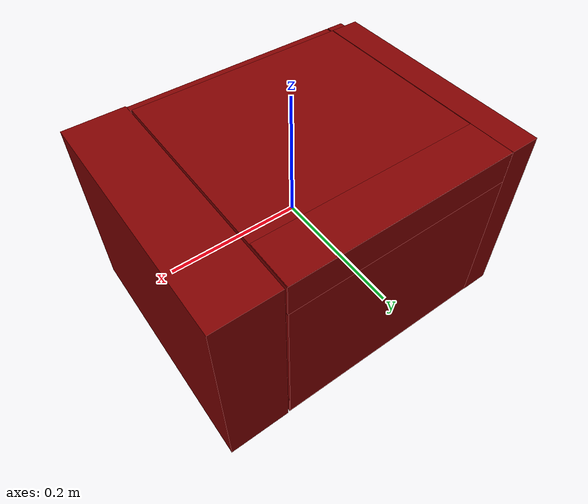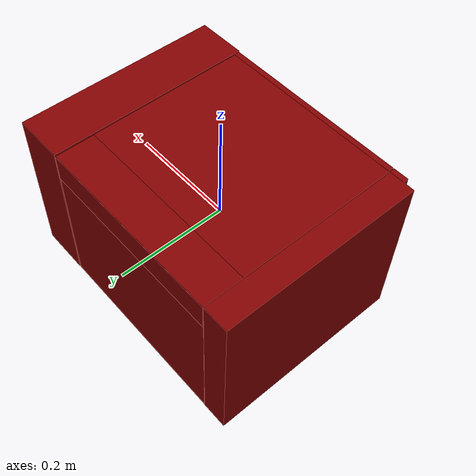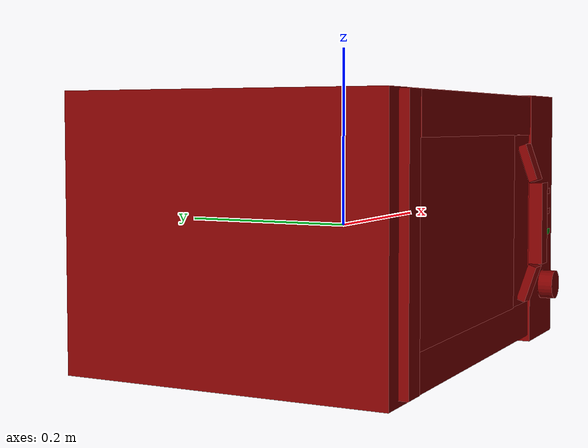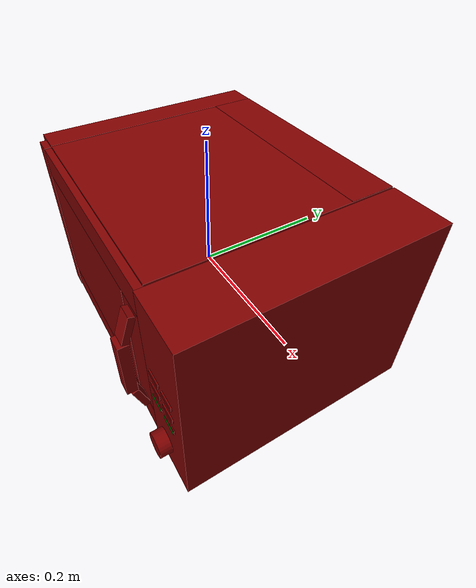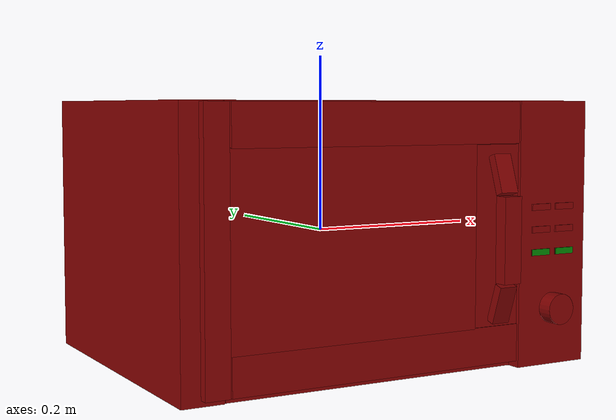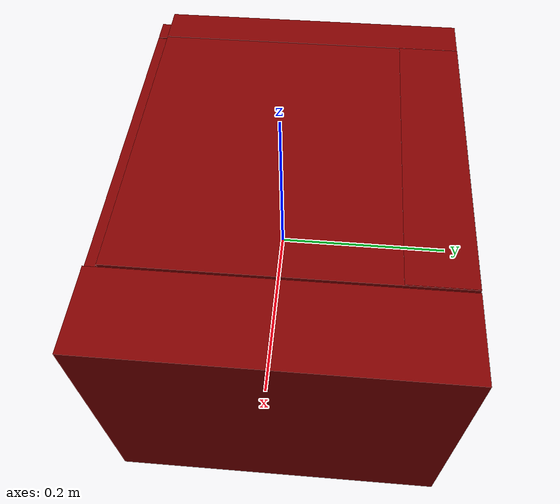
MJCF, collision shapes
<mujoco model="model">
  <compiler angle="radian"/>
  <asset>
    <mesh file="visuals/door.obj" name="door_vis"/>
    <mesh file="visuals/door_Clear.obj" name="door_Clear_vis"/>
    <mesh file="visuals/Body001.obj" name="Body001_vis"/>
    <mesh file="visuals/Button001.obj" name="Button001_vis"/>
    <mesh file="visuals/Button002.obj" name="Button002_vis"/>
    <mesh file="visuals/Button003.obj" name="Button003_vis"/>
    <mesh file="visuals/Button004.obj" name="Button004_vis"/>
    <mesh file="visuals/Button005.obj" name="Button005_vis"/>
    <mesh file="visuals/Button006.obj" name="Button006_vis"/>
    <mesh file="visuals/Disc001.obj" name="Disc001_vis"/>
    <mesh file="visuals/Knob001.obj" name="Knob001_vis"/>
    <texture file="visuals/T_BC001.png" name="Body001_material" type="2d"/>
    <material name="Body001_material" rgba="1 1 1 1.0" texture="Body001_material" shininess="0.711989015340805" specular="0.3103448502657381"/>
    <texture file="visuals/T_BC001.png" name="door_material" type="2d"/>
    <material name="door_material" rgba="1 1 1 1.0" texture="door_material" shininess="0.711989015340805" specular="0.3103448502657381"/>
    <texture file="visuals/T_BC001.png" name="door_Clear_material" type="2d"/>
    <material name="door_Clear_material" rgba="1 1 1 0.800000011920929" texture="door_Clear_material" shininess="0.5228637158870697" specular="0.3103448502657381"/>
    <texture file="visuals/T_BC001.png" name="Button001_material" type="2d"/>
    <material name="Button001_material" rgba="1 1 1 1.0" texture="Button001_material" shininess="0.711989015340805" specular="0.3103448502657381"/>
    <texture file="visuals/T_BC001.png" name="Button002_material" type="2d"/>
    <material name="Button002_material" rgba="1 1 1 1.0" texture="Button002_material" shininess="0.711989015340805" specular="0.3103448502657381"/>
    <texture file="visuals/T_BC001.png" name="Button003_material" type="2d"/>
    <material name="Button003_material" rgba="1 1 1 1.0" texture="Button003_material" shininess="0.711989015340805" specular="0.3103448502657381"/>
    <texture file="visuals/T_BC001.png" name="Button004_material" type="2d"/>
    <material name="Button004_material" rgba="1 1 1 1.0" texture="Button004_material" shininess="0.711989015340805" specular="0.3103448502657381"/>
    <texture file="visuals/T_BC001.png" name="Button005_material" type="2d"/>
    <material name="Button005_material" rgba="1 1 1 1.0" texture="Button005_material" shininess="0.711989015340805" specular="0.3103448502657381"/>
    <texture file="visuals/T_BC001.png" name="Button006_material" type="2d"/>
    <material name="Button006_material" rgba="1 1 1 1.0" texture="Button006_material" shininess="0.711989015340805" specular="0.3103448502657381"/>
    <texture file="visuals/T_BC001.png" name="Disc001_material" type="2d"/>
    <material name="Disc001_material" rgba="1 1 1 1.0" texture="Disc001_material" shininess="0.711989015340805" specular="0.3103448502657381"/>
    <texture file="visuals/T_BC001.png" name="Knob001_material" type="2d"/>
    <material name="Knob001_material" rgba="1 1 1 1.0" texture="Knob001_material" shininess="0.711989015340805" specular="0.3103448502657381"/>
  </asset>
  <default>
    <default class="visual">
      <geom conaffinity="0" contype="0" group="1" type="mesh"/>
    </default>
    <default class="collision">
      <geom group="0" rgba="0.5 0 0 0.5"/>
    </default>
    <default class="spawn">
      <geom group="0" rgba="1 1 1 0.5" contype="0" conaffinity="0"/>
      <site group="0" rgba="1 1 1 0.5"/>
    </default>
    <default class="region">
      <geom group="1" conaffinity="0" contype="0" rgba="0 1 0 0"/>
    </default>
  </default>
  <worldbody>
    <body>
      <body name="object">
        <geom class="collision" type="box" pos="0.2136487066745758 -0.17617058753967285 -0.018577463924884796" size="0.012441707774996758 0.00010353604011470452 0.003477788297459483" quat="1.0 0.0 0.0 0.0" name="stop_button" rgba="0.0 0.5 0 0.5"/>
        <geom class="collision" type="box" pos="0.18071165680885315 -0.17590875923633575 -0.018577463924884796" size="0.012441707774996758 0.00010353604011470452 0.003477788297459483" quat="1.0 0.0 0.0 0.0" name="start_button" rgba="0.0 0.5 0 0.5"/>
        <geom class="collision" type="box" pos="-0.027223782613873482 -0.018713073804974556 -0.09621839225292206" size="0.13464368879795074 0.13672079145908356 0.0012357323430478573" quat="1.0 0.0 0.0 0.0" name="tray" rgba="0 1 0 0.5"/>
        <geom mesh="Body001_vis" type="mesh" solimp="0.998 0.998 0.001" solref="0.001 1" density="100" friction="0.95 0.3 0.1" class="visual" material="Body001_material"/>
        <geom class="collision" type="box" pos="0.19826951622962952 0.012877173721790314 0.001288875937461853" size="0.04567837342619896 0.18612715601921082 0.1468229442834854" quat="1.0 0.0 0.0 0.0"/>
        <geom class="collision" type="box" pos="-0.21960359811782837 0.018938332796096802 0.0015757456421852112" size="0.023061010986566544 0.1800125539302826 0.14653193950653076" quat="1.0 0.0 0.0 0.0"/>
        <geom class="collision" type="box" pos="-0.02289612591266632 0.019093796610832214 0.12277206033468246" size="0.17275340855121613 0.1800936907529831 0.025241125375032425" quat="1.0 0.0 0.0 0.0"/>
        <geom class="collision" type="box" pos="-0.02289612591266632 0.019093796610832214 -0.12812581658363342" size="0.17275340855121613 0.17958173155784607 0.01638137176632881" quat="1.0 0.0 0.0 0.0"/>
        <geom class="collision" type="box" pos="-0.023502305150032043 0.16378329694271088 0.00293867290019989" size="0.17257188260555267 0.03523211181163788 0.14533135294914246" quat="1.0 0.0 0.0 0.0"/>
        <body name="door">
          <joint axis="0.0 0.0 1.0" pos="-0.23261520266532898 -0.17067189514636993 0.00418679416179657" limited="true" name="microjoint" range="-1.5707963267948966 0.0" type="hinge" damping="1" frictionloss="1" armature=".01" stiffness="0.05"/>
          <geom mesh="door_vis" type="mesh" solimp="0.998 0.998 0.001" solref="0.001 1" density="100" friction="0.95 0.3 0.1" class="visual" material="door_material"/>
          <geom class="collision" type="box" pos="-0.20852850377559662 -0.16673700511455536 0.004422716796398163" size="0.013513479381799698 0.005219915881752968 0.14249010384082794" quat="1.0 0.0 0.0 0.0"/>
          <geom class="collision" type="box" pos="-0.020628754049539566 -0.16673700511455536 0.12443259358406067" size="0.17267410457134247 0.005219892133027315 0.022481249645352364" quat="1.0 0.0 0.0 0.0"/>
          <geom class="collision" type="box" pos="-0.020628754049539566 -0.16603438556194305 -0.11734630167484283" size="0.17267417907714844 0.004848784301429987 0.02086298167705536" quat="1.0 0.0 0.0 0.0"/>
          <geom class="collision" type="box" pos="0.12179268896579742 -0.1657928228378296 0.002536427229642868" size="0.029872016981244087 0.00460722204297781 0.09879974275827408" quat="1.0 0.0 0.0 0.0"/>
          <geom class="collision" type="box" pos="0.12306191027164459 -0.1911911815404892 -0.00022266432642936707" size="0.010868117213249207 0.007811632938683033 0.04683265462517738" quat="1.0 0.0 0.0 0.0" name="door_handle"/>
          <geom class="collision" type="box" pos="0.12306191027164459 -0.1811274141073227 0.06931126862764359" size="0.010868117213249207 0.005029362626373768 0.021664418280124664" quat="0.9866194128990173 -0.16304025053977966 3.620221132670595e-17 1.8020221814975874e-24"/>
          <geom class="collision" type="box" pos="0.12306191027164459 -0.1811274141073227 -0.0700952559709549" size="0.010868117213249207 0.005029362626373768 0.021664418280124664" quat="7.448769423490376e-08 -1.2309195440707299e-08 -0.16304023563861847 0.9866194128990173"/>
          <body name="door_Clear">
            <geom mesh="door_Clear_vis" type="mesh" solimp="0.998 0.998 0.001" solref="0.001 1" density="100" friction="0.95 0.3 0.1" class="visual" material="door_Clear_material"/>
            <geom class="collision" type="box" pos="-0.05001668259501457 -0.16979660093784332 0.002629842609167099" size="0.14505714178085327 0.0014070942997932434 0.10015548765659332" quat="1.0 0.0 0.0 0.0"/>
          </body>
        </body>
        <body name="Button001">
          <joint axis="0.0 1.0 0.0" pos="0.18079844117164612 -0.17497518658638 0.03165153041481972" limited="true" name="Button001_joint" range="0.0 0.0006" type="slide" damping="1" frictionloss="1" armature=".01" stiffness="0.05"/>
          <geom mesh="Button001_vis" type="mesh" solimp="0.998 0.998 0.001" solref="0.001 1" density="100" friction="0.95 0.3 0.1" class="visual" material="Button001_material"/>
          <geom class="collision" type="box" pos="0.18086186051368713 -0.17516857385635376 0.031614258885383606" size="0.012591909617185593 0.0008860657108016312 0.003477788297459483" quat="1.0 0.0 0.0 0.0"/>
        </body>
        <body name="Button002">
          <joint axis="0.0 1.0 0.0" pos="0.21347922086715698 -0.17497515678405762 0.03165155276656151" limited="true" name="Button002_joint" range="0.0 0.0006" type="slide" damping="1" frictionloss="1" armature=".01" stiffness="0.05"/>
          <geom mesh="Button002_vis" type="mesh" solimp="0.998 0.998 0.001" solref="0.001 1" density="100" friction="0.95 0.3 0.1" class="visual" material="Button002_material"/>
          <geom class="collision" type="box" pos="0.2134365439414978 -0.17516857385635376 0.031614258885383606" size="0.012533380649983883 0.0008860665839165449 0.003477788297459483" quat="1.0 0.0 0.0 0.0"/>
        </body>
        <body name="Button003">
          <joint axis="0.0 1.0 0.0" pos="0.1808081865310669 -0.17494675517082214 0.006810463964939117" limited="true" name="Button003_joint" range="0.0 0.0006" type="slide" damping="1" frictionloss="1" armature=".01" stiffness="0.05"/>
          <geom mesh="Button003_vis" type="mesh" solimp="0.998 0.998 0.001" solref="0.001 1" density="100" friction="0.95 0.3 0.1" class="visual" material="Button003_material"/>
          <geom class="collision" type="box" pos="0.18086186051368713 -0.17514771223068237 0.0067601436749100685" size="0.012591909617185593 0.0008652116521261632 0.003477788297459483" quat="1.0 0.0 0.0 0.0"/>
        </body>
        <body name="Button004">
          <joint axis="0.0 1.0 0.0" pos="0.2134695053100586 -0.17494675517082214 0.006810478866100311" limited="true" name="Button004_joint" range="0.0 0.0006" type="slide" damping="1" frictionloss="1" armature=".01" stiffness="0.05"/>
          <geom mesh="Button004_vis" type="mesh" solimp="0.998 0.998 0.001" solref="0.001 1" density="100" friction="0.95 0.3 0.1" class="visual" material="Button004_material"/>
          <geom class="collision" type="box" pos="0.2134365439414978 -0.17514771223068237 0.006760147400200367" size="0.012533380649983883 0.0008652116521261632 0.003477788297459483" quat="1.0 0.0 0.0 0.0"/>
        </body>
        <body name="Button005">
          <joint axis="0.0 1.0 0.0" pos="0.18080487847328186 -0.17493724822998047 -0.018521953374147415" limited="true" name="Button005_joint" range="0.0 0.0006" type="slide" damping="1" frictionloss="1" armature=".01" stiffness="0.05"/>
          <geom mesh="Button005_vis" type="mesh" solimp="0.998 0.998 0.001" solref="0.001 1" density="100" friction="0.95 0.3 0.1" class="visual" material="Button005_material"/>
          <geom class="collision" type="box" pos="0.18086186051368713 -0.1748283952474594 -0.018577463924884796" size="0.012591909617185593 0.0005458864034153521 0.003477788297459483" quat="1.0 0.0 0.0 0.0"/>
        </body>
        <body name="Button006">
          <joint axis="0.0 1.0 0.0" pos="0.21347278356552124 -0.17493721842765808 -0.01852194219827652" limited="true" name="Button006_joint" range="0.0 0.0006" type="slide" damping="1" frictionloss="1" armature=".01" stiffness="0.05"/>
          <geom mesh="Button006_vis" type="mesh" solimp="0.998 0.998 0.001" solref="0.001 1" density="100" friction="0.95 0.3 0.1" class="visual" material="Button006_material"/>
          <geom class="collision" type="box" pos="0.2134365439414978 -0.1748390942811966 -0.018577463924884796" size="0.012533311732113361 0.0005965777090750635 0.0034777710679918528" quat="1.0 0.0 0.0 0.0"/>
        </body>
        <body name="Disc001">
          <joint axis="0.0 0.0 1.0" pos="-0.027904976159334183 -0.019133813679218292 -0.10595712065696716" limited="false" name="Disc001_joint" range="0 360" type="hinge" damping="1" frictionloss="1" armature=".01" stiffness="0.05"/>
          <geom mesh="Disc001_vis" type="mesh" solimp="0.998 0.998 0.001" solref="0.001 1" density="100" friction="0.95 0.3 0.1" class="visual" material="Disc001_material"/>
          <geom class="collision" type="cylinder" pos="-0.027223782613873482 -0.018713073804974556 -0.10484211146831512" size="0.13464435935020447 0.005702100694179535" quat="1.0 0.0 0.0 0.0"/>
        </body>
        <body name="Knob001">
          <joint axis="0.0 1.0 0.0" pos="0.197006493806839 -0.18286071717739105 -0.08138467371463776" limited="true" name="Knob001_joint" range="0.0 5.410520681182422" type="hinge" damping="0.05" armature="0.001"/>
          <geom mesh="Knob001_vis" type="mesh" solimp="0.998 0.998 0.001" solref="0.001 1" density="100" friction="0.95 0.3 0.1" class="visual" material="Knob001_material"/>
          <geom class="collision" type="cylinder" pos="0.19698505103588104 -0.183700293302536 -0.08130155503749847" size="0.017063237726688385 0.008530296385288239" quat="0.7071067094802856 0.70710688829422 0.0 0.0"/>
        </body>
        <geom class="region" name="reg_main" type="box" pos="3.725290298461914e-09 0.012327730655670166 1.2293457984924316e-06" size="0.2440180480480194 0.18683356046676636 0.14834454655647278"/>
        <geom class="region" name="reg_int" type="box" pos="-0.02401158958673477 -0.015030540525913239 -0.008260313421487808" size="0.17332201451063156 0.14430446177721024 0.1025814451277256"/>
      </body>
    </body>
  </worldbody>
  <actuator>
    <motor name="microjoint_actuator" joint="microjoint" gear="10"/>
    <motor name="Button001_joint_actuator" joint="Button001_joint" gear="0.5"/>
    <motor name="Button002_joint_actuator" joint="Button002_joint" gear="0.5"/>
    <motor name="Button003_joint_actuator" joint="Button003_joint" gear="0.5"/>
    <motor name="Button004_joint_actuator" joint="Button004_joint" gear="0.5"/>
    <motor name="Button005_joint_actuator" joint="Button005_joint" gear="0.5"/>
    <motor name="Button006_joint_actuator" joint="Button006_joint" gear="0.5"/>
    <motor name="Disc001_joint_actuator" joint="Disc001_joint" gear="50"/>
    <motor name="Knob001_joint_actuator" joint="Knob001_joint" gear="50"/>
  </actuator>
</mujoco>
